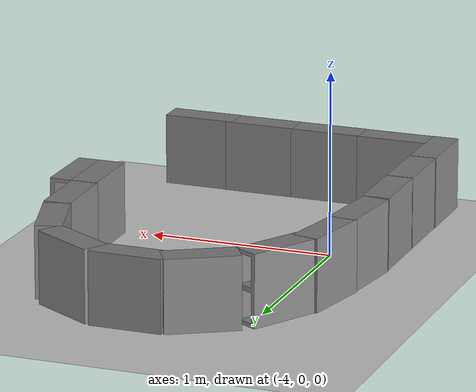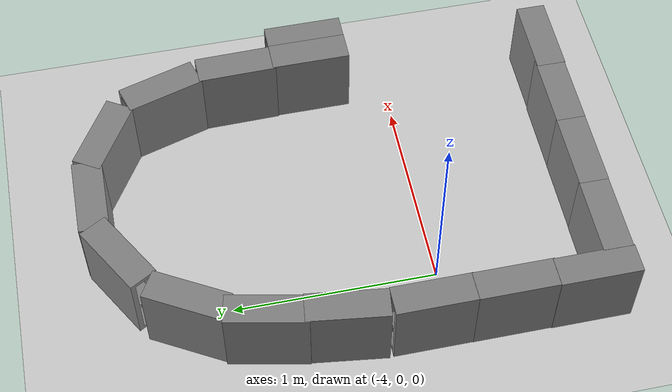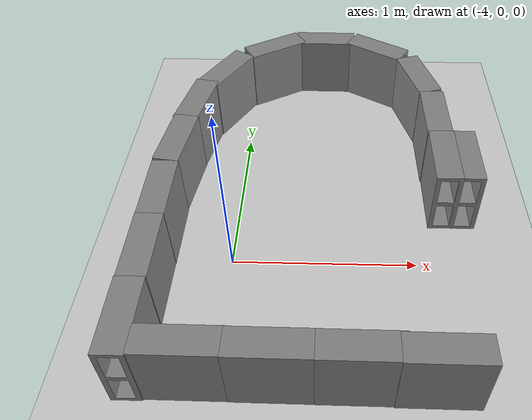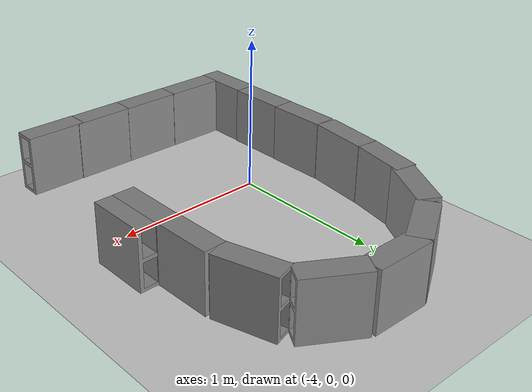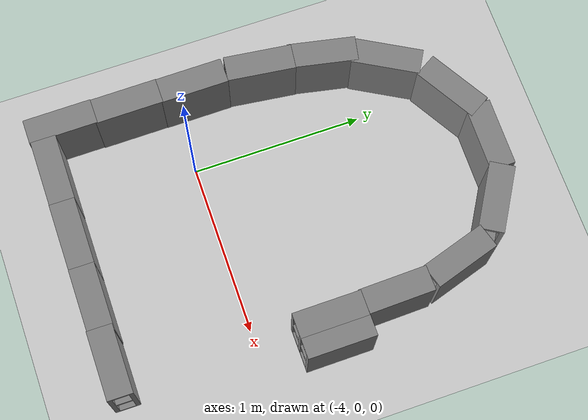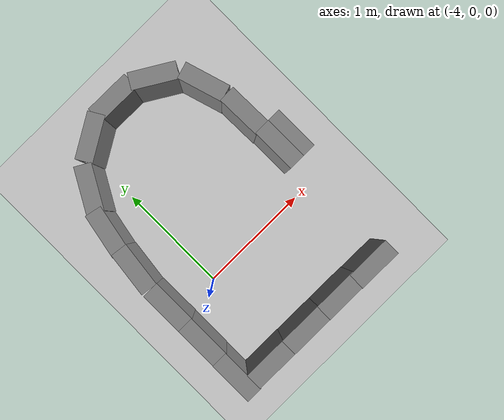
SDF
<sdf version="1.6">
 <world name="default">
  <model name="ground_plane">
   <static>1</static>
   <link name="link">
    <collision name="collision">
     <geometry><plane><normal>0 0 1</normal><size>100 100</size></plane></geometry>
     <surface>
      <contact><collide_bitmask>65535</collide_bitmask></contact>
      <friction><ode><mu>100</mu><mu2>50</mu2></ode></friction>
     </surface>
    </collision>
    <visual name="visual">
     <cast_shadows>0</cast_shadows>
     <geometry><plane><normal>0 0 1</normal><size>100 100</size></plane></geometry>
     <material>
      <script><uri>file://media/materials/scripts/gazebo.material</uri><name>Gazebo/Grey</name></script>
     </material>
    </visual>
   </link>
  </model>
  <model name="cinder_block_wide_clone_2">
   <link name="link">
    <inertial>
     <pose>0 0 0.071438 0 -0 0</pose>
     <mass>5</mass>
     <inertia>
      <ixx>0.0681466</ixx>
      <ixy>0</ixy>
      <iyy>0.0681466</iyy>
      <ixz>0</ixz>
      <iyz>0</iyz>
      <izz>0.124808</izz>
     </inertia>
    </inertial>
    <visual name="visual">
     <geometry><mesh><uri>model://cinder_block_wide/meshes/cinder_block_wide.dae</uri></mesh></geometry>
    </visual>
    <collision name="top">
     <pose>0 0 0.130175 0 -0 0</pose>
     <geometry><box><size>0.387354 0.387354 0.0254</size></box></geometry>
     <surface>
      <contact><ode><max_vel>0.1</max_vel><min_depth>0.001</min_depth></ode></contact>
      <friction><ode><mu>1</mu><mu2>1</mu2></ode></friction>
     </surface>
    </collision>
    <collision name="bottom">
     <pose>0 0 0.0127 0 -0 0</pose>
     <geometry><box><size>0.387354 0.387354 0.0254</size></box></geometry>
     <surface>
      <contact><ode><max_vel>0.1</max_vel><min_depth>0.001</min_depth></ode></contact>
      <friction><ode><mu>1</mu><mu2>1</mu2></ode></friction>
     </surface>
    </collision>
    <collision name="left">
     <pose>0 -0.183355 0.071438 0 -0 0</pose>
     <geometry><box><size>0.387354 0.020643 0.092075</size></box></geometry>
     <surface>
      <contact><ode><max_vel>0.1</max_vel><min_depth>0.001</min_depth></ode></contact>
      <friction><ode><mu>1</mu><mu2>1</mu2></ode></friction>
     </surface>
    </collision>
    <collision name="right">
     <pose>0 0.183355 0.071438 0 -0 0</pose>
     <geometry><box><size>0.387354 0.020643 0.092075</size></box></geometry>
     <surface>
      <contact><ode><max_vel>0.1</max_vel><min_depth>0.001</min_depth></ode></contact>
      <friction><ode><mu>1</mu><mu2>1</mu2></ode></friction>
     </surface>
    </collision>
    <collision name="middle">
     <pose>0 0 0.071438 0 -0 0</pose>
     <geometry><box><size>0.387354 0.0254 0.092075</size></box></geometry>
     <surface>
      <contact><ode><max_vel>0.1</max_vel><min_depth>0.001</min_depth></ode></contact>
      <friction><ode><mu>1</mu><mu2>1</mu2></ode></friction>
     </surface>
    </collision>
   </link>
   <pose>-2.99041 -0.837587 0.263357 -1.56869 0 -0.003839</pose>
  </model>
  <model name="cinder_block_wide_clone_3">
   <link name="link">
    <inertial>
     <pose>0 0 0.071438 0 -0 0</pose>
     <mass>5</mass>
     <inertia>
      <ixx>0.0681466</ixx>
      <ixy>0</ixy>
      <iyy>0.0681466</iyy>
      <ixz>0</ixz>
      <iyz>0</iyz>
      <izz>0.124808</izz>
     </inertia>
    </inertial>
    <visual name="visual">
     <geometry><mesh><uri>model://cinder_block_wide/meshes/cinder_block_wide.dae</uri></mesh></geometry>
    </visual>
    <collision name="top">
     <pose>0 0 0.130175 0 -0 0</pose>
     <geometry><box><size>0.387354 0.387354 0.0254</size></box></geometry>
     <surface>
      <contact><ode><max_vel>0.1</max_vel><min_depth>0.001</min_depth></ode></contact>
      <friction><ode><mu>1</mu><mu2>1</mu2></ode></friction>
     </surface>
    </collision>
    <collision name="bottom">
     <pose>0 0 0.0127 0 -0 0</pose>
     <geometry><box><size>0.387354 0.387354 0.0254</size></box></geometry>
     <surface>
      <contact><ode><max_vel>0.1</max_vel><min_depth>0.001</min_depth></ode></contact>
      <friction><ode><mu>1</mu><mu2>1</mu2></ode></friction>
     </surface>
    </collision>
    <collision name="left">
     <pose>0 -0.183355 0.071438 0 -0 0</pose>
     <geometry><box><size>0.387354 0.020643 0.092075</size></box></geometry>
     <surface>
      <contact><ode><max_vel>0.1</max_vel><min_depth>0.001</min_depth></ode></contact>
      <friction><ode><mu>1</mu><mu2>1</mu2></ode></friction>
     </surface>
    </collision>
    <collision name="right">
     <pose>0 0.183355 0.071438 0 -0 0</pose>
     <geometry><box><size>0.387354 0.020643 0.092075</size></box></geometry>
     <surface>
      <contact><ode><max_vel>0.1</max_vel><min_depth>0.001</min_depth></ode></contact>
      <friction><ode><mu>1</mu><mu2>1</mu2></ode></friction>
     </surface>
    </collision>
    <collision name="middle">
     <pose>0 0 0.071438 0 -0 0</pose>
     <geometry><box><size>0.387354 0.0254 0.092075</size></box></geometry>
     <surface>
      <contact><ode><max_vel>0.1</max_vel><min_depth>0.001</min_depth></ode></contact>
      <friction><ode><mu>1</mu><mu2>1</mu2></ode></friction>
     </surface>
    </collision>
   </link>
   <pose>-3.34042 -0.832439 0.263357 -1.56869 0 -0.003839</pose>
  </model>
  <model name="cinder_block_wide_clone_4">
   <link name="link">
    <inertial>
     <pose>0 0 0.071438 0 -0 0</pose>
     <mass>5</mass>
     <inertia>
      <ixx>0.0681466</ixx>
      <ixy>0</ixy>
      <iyy>0.0681466</iyy>
      <ixz>0</ixz>
      <iyz>0</iyz>
      <izz>0.124808</izz>
     </inertia>
    </inertial>
    <visual name="visual">
     <geometry><mesh><uri>model://cinder_block_wide/meshes/cinder_block_wide.dae</uri></mesh></geometry>
    </visual>
    <collision name="top">
     <pose>0 0 0.130175 0 -0 0</pose>
     <geometry><box><size>0.387354 0.387354 0.0254</size></box></geometry>
     <surface>
      <contact><ode><max_vel>0.1</max_vel><min_depth>0.001</min_depth></ode></contact>
      <friction><ode><mu>1</mu><mu2>1</mu2></ode></friction>
     </surface>
    </collision>
    <collision name="bottom">
     <pose>0 0 0.0127 0 -0 0</pose>
     <geometry><box><size>0.387354 0.387354 0.0254</size></box></geometry>
     <surface>
      <contact><ode><max_vel>0.1</max_vel><min_depth>0.001</min_depth></ode></contact>
      <friction><ode><mu>1</mu><mu2>1</mu2></ode></friction>
     </surface>
    </collision>
    <collision name="left">
     <pose>0 -0.183355 0.071438 0 -0 0</pose>
     <geometry><box><size>0.387354 0.020643 0.092075</size></box></geometry>
     <surface>
      <contact><ode><max_vel>0.1</max_vel><min_depth>0.001</min_depth></ode></contact>
      <friction><ode><mu>1</mu><mu2>1</mu2></ode></friction>
     </surface>
    </collision>
    <collision name="right">
     <pose>0 0.183355 0.071438 0 -0 0</pose>
     <geometry><box><size>0.387354 0.020643 0.092075</size></box></geometry>
     <surface>
      <contact><ode><max_vel>0.1</max_vel><min_depth>0.001</min_depth></ode></contact>
      <friction><ode><mu>1</mu><mu2>1</mu2></ode></friction>
     </surface>
    </collision>
    <collision name="middle">
     <pose>0 0 0.071438 0 -0 0</pose>
     <geometry><box><size>0.387354 0.0254 0.092075</size></box></geometry>
     <surface>
      <contact><ode><max_vel>0.1</max_vel><min_depth>0.001</min_depth></ode></contact>
      <friction><ode><mu>1</mu><mu2>1</mu2></ode></friction>
     </surface>
    </collision>
   </link>
   <pose>-3.72096 -0.830221 0.263357 -1.56869 0 -0.003839</pose>
  </model>
  <model name="cinder_block_wide_clone_5">
   <link name="link">
    <inertial>
     <pose>0 0 0.071438 0 -0 0</pose>
     <mass>5</mass>
     <inertia>
      <ixx>0.0681466</ixx>
      <ixy>0</ixy>
      <iyy>0.0681466</iyy>
      <ixz>0</ixz>
      <iyz>0</iyz>
      <izz>0.124808</izz>
     </inertia>
    </inertial>
    <visual name="visual">
     <geometry><mesh><uri>model://cinder_block_wide/meshes/cinder_block_wide.dae</uri></mesh></geometry>
    </visual>
    <collision name="top">
     <pose>0 0 0.130175 0 -0 0</pose>
     <geometry><box><size>0.387354 0.387354 0.0254</size></box></geometry>
     <surface>
      <contact><ode><max_vel>0.1</max_vel><min_depth>0.001</min_depth></ode></contact>
      <friction><ode><mu>1</mu><mu2>1</mu2></ode></friction>
     </surface>
    </collision>
    <collision name="bottom">
     <pose>0 0 0.0127 0 -0 0</pose>
     <geometry><box><size>0.387354 0.387354 0.0254</size></box></geometry>
     <surface>
      <contact><ode><max_vel>0.1</max_vel><min_depth>0.001</min_depth></ode></contact>
      <friction><ode><mu>1</mu><mu2>1</mu2></ode></friction>
     </surface>
    </collision>
    <collision name="left">
     <pose>0 -0.183355 0.071438 0 -0 0</pose>
     <geometry><box><size>0.387354 0.020643 0.092075</size></box></geometry>
     <surface>
      <contact><ode><max_vel>0.1</max_vel><min_depth>0.001</min_depth></ode></contact>
      <friction><ode><mu>1</mu><mu2>1</mu2></ode></friction>
     </surface>
    </collision>
    <collision name="right">
     <pose>0 0.183355 0.071438 0 -0 0</pose>
     <geometry><box><size>0.387354 0.020643 0.092075</size></box></geometry>
     <surface>
      <contact><ode><max_vel>0.1</max_vel><min_depth>0.001</min_depth></ode></contact>
      <friction><ode><mu>1</mu><mu2>1</mu2></ode></friction>
     </surface>
    </collision>
    <collision name="middle">
     <pose>0 0 0.071438 0 -0 0</pose>
     <geometry><box><size>0.387354 0.0254 0.092075</size></box></geometry>
     <surface>
      <contact><ode><max_vel>0.1</max_vel><min_depth>0.001</min_depth></ode></contact>
      <friction><ode><mu>1</mu><mu2>1</mu2></ode></friction>
     </surface>
    </collision>
   </link>
   <pose>-4.10015 -0.827299 0.263357 -1.56869 0 -0.003839</pose>
  </model>
  <model name="cinder_block_wide_clone_6">
   <link name="link">
    <inertial>
     <pose>0 0 0.071438 0 -0 0</pose>
     <mass>5</mass>
     <inertia>
      <ixx>0.0681466</ixx>
      <ixy>0</ixy>
      <iyy>0.0681466</iyy>
      <ixz>0</ixz>
      <iyz>0</iyz>
      <izz>0.124808</izz>
     </inertia>
    </inertial>
    <visual name="visual">
     <geometry><mesh><uri>model://cinder_block_wide/meshes/cinder_block_wide.dae</uri></mesh></geometry>
    </visual>
    <collision name="top">
     <pose>0 0 0.130175 0 -0 0</pose>
     <geometry><box><size>0.387354 0.387354 0.0254</size></box></geometry>
     <surface>
      <contact><ode><max_vel>0.1</max_vel><min_depth>0.001</min_depth></ode></contact>
      <friction><ode><mu>1</mu><mu2>1</mu2></ode></friction>
     </surface>
    </collision>
    <collision name="bottom">
     <pose>0 0 0.0127 0 -0 0</pose>
     <geometry><box><size>0.387354 0.387354 0.0254</size></box></geometry>
     <surface>
      <contact><ode><max_vel>0.1</max_vel><min_depth>0.001</min_depth></ode></contact>
      <friction><ode><mu>1</mu><mu2>1</mu2></ode></friction>
     </surface>
    </collision>
    <collision name="left">
     <pose>0 -0.183355 0.071438 0 -0 0</pose>
     <geometry><box><size>0.387354 0.020643 0.092075</size></box></geometry>
     <surface>
      <contact><ode><max_vel>0.1</max_vel><min_depth>0.001</min_depth></ode></contact>
      <friction><ode><mu>1</mu><mu2>1</mu2></ode></friction>
     </surface>
    </collision>
    <collision name="right">
     <pose>0 0.183355 0.071438 0 -0 0</pose>
     <geometry><box><size>0.387354 0.020643 0.092075</size></box></geometry>
     <surface>
      <contact><ode><max_vel>0.1</max_vel><min_depth>0.001</min_depth></ode></contact>
      <friction><ode><mu>1</mu><mu2>1</mu2></ode></friction>
     </surface>
    </collision>
    <collision name="middle">
     <pose>0 0 0.071438 0 -0 0</pose>
     <geometry><box><size>0.387354 0.0254 0.092075</size></box></geometry>
     <surface>
      <contact><ode><max_vel>0.1</max_vel><min_depth>0.001</min_depth></ode></contact>
      <friction><ode><mu>1</mu><mu2>1</mu2></ode></friction>
     </surface>
    </collision>
   </link>
   <pose>-4.43202 -0.638749 0.263357 -1.57078 0.002106 -1.56659</pose>
  </model>
  <model name="cinder_block_wide_clone_6_clone">
   <link name="link">
    <inertial>
     <pose>0 0 0.071438 0 -0 0</pose>
     <mass>5</mass>
     <inertia>
      <ixx>0.0681466</ixx>
      <ixy>0</ixy>
      <iyy>0.0681466</iyy>
      <ixz>0</ixz>
      <iyz>0</iyz>
      <izz>0.124808</izz>
     </inertia>
    </inertial>
    <visual name="visual">
     <geometry><mesh><uri>model://cinder_block_wide/meshes/cinder_block_wide.dae</uri></mesh></geometry>
    </visual>
    <collision name="top">
     <pose>0 0 0.130175 0 -0 0</pose>
     <geometry><box><size>0.387354 0.387354 0.0254</size></box></geometry>
     <surface>
      <contact><ode><max_vel>0.1</max_vel><min_depth>0.001</min_depth></ode></contact>
      <friction><ode><mu>1</mu><mu2>1</mu2></ode></friction>
     </surface>
    </collision>
    <collision name="bottom">
     <pose>0 0 0.0127 0 -0 0</pose>
     <geometry><box><size>0.387354 0.387354 0.0254</size></box></geometry>
     <surface>
      <contact><ode><max_vel>0.1</max_vel><min_depth>0.001</min_depth></ode></contact>
      <friction><ode><mu>1</mu><mu2>1</mu2></ode></friction>
     </surface>
    </collision>
    <collision name="left">
     <pose>0 -0.183355 0.071438 0 -0 0</pose>
     <geometry><box><size>0.387354 0.020643 0.092075</size></box></geometry>
     <surface>
      <contact><ode><max_vel>0.1</max_vel><min_depth>0.001</min_depth></ode></contact>
      <friction><ode><mu>1</mu><mu2>1</mu2></ode></friction>
     </surface>
    </collision>
    <collision name="right">
     <pose>0 0.183355 0.071438 0 -0 0</pose>
     <geometry><box><size>0.387354 0.020643 0.092075</size></box></geometry>
     <surface>
      <contact><ode><max_vel>0.1</max_vel><min_depth>0.001</min_depth></ode></contact>
      <friction><ode><mu>1</mu><mu2>1</mu2></ode></friction>
     </surface>
    </collision>
    <collision name="middle">
     <pose>0 0 0.071438 0 -0 0</pose>
     <geometry><box><size>0.387354 0.0254 0.092075</size></box></geometry>
     <surface>
      <contact><ode><max_vel>0.1</max_vel><min_depth>0.001</min_depth></ode></contact>
      <friction><ode><mu>1</mu><mu2>1</mu2></ode></friction>
     </surface>
    </collision>
   </link>
   <pose>-4.43004 -0.260362 0.263357 -1.57078 0.002106 -1.56659</pose>
  </model>
  <model name="cinder_block_wide_clone_6_clone_0">
   <link name="link">
    <inertial>
     <pose>0 0 0.071438 0 -0 0</pose>
     <mass>5</mass>
     <inertia>
      <ixx>0.0681466</ixx>
      <ixy>0</ixy>
      <iyy>0.0681466</iyy>
      <ixz>0</ixz>
      <iyz>0</iyz>
      <izz>0.124808</izz>
     </inertia>
    </inertial>
    <visual name="visual">
     <geometry><mesh><uri>model://cinder_block_wide/meshes/cinder_block_wide.dae</uri></mesh></geometry>
    </visual>
    <collision name="top">
     <pose>0 0 0.130175 0 -0 0</pose>
     <geometry><box><size>0.387354 0.387354 0.0254</size></box></geometry>
     <surface>
      <contact><ode><max_vel>0.1</max_vel><min_depth>0.001</min_depth></ode></contact>
      <friction><ode><mu>1</mu><mu2>1</mu2></ode></friction>
     </surface>
    </collision>
    <collision name="bottom">
     <pose>0 0 0.0127 0 -0 0</pose>
     <geometry><box><size>0.387354 0.387354 0.0254</size></box></geometry>
     <surface>
      <contact><ode><max_vel>0.1</max_vel><min_depth>0.001</min_depth></ode></contact>
      <friction><ode><mu>1</mu><mu2>1</mu2></ode></friction>
     </surface>
    </collision>
    <collision name="left">
     <pose>0 -0.183355 0.071438 0 -0 0</pose>
     <geometry><box><size>0.387354 0.020643 0.092075</size></box></geometry>
     <surface>
      <contact><ode><max_vel>0.1</max_vel><min_depth>0.001</min_depth></ode></contact>
      <friction><ode><mu>1</mu><mu2>1</mu2></ode></friction>
     </surface>
    </collision>
    <collision name="right">
     <pose>0 0.183355 0.071438 0 -0 0</pose>
     <geometry><box><size>0.387354 0.020643 0.092075</size></box></geometry>
     <surface>
      <contact><ode><max_vel>0.1</max_vel><min_depth>0.001</min_depth></ode></contact>
      <friction><ode><mu>1</mu><mu2>1</mu2></ode></friction>
     </surface>
    </collision>
    <collision name="middle">
     <pose>0 0 0.071438 0 -0 0</pose>
     <geometry><box><size>0.387354 0.0254 0.092075</size></box></geometry>
     <surface>
      <contact><ode><max_vel>0.1</max_vel><min_depth>0.001</min_depth></ode></contact>
      <friction><ode><mu>1</mu><mu2>1</mu2></ode></friction>
     </surface>
    </collision>
   </link>
   <pose>-4.43002 0.120318 0.263357 -1.57078 0.002106 -1.56659</pose>
  </model>
  <model name="cinder_block_wide_clone_6_clone_1">
   <link name="link">
    <inertial>
     <pose>0 0 0.071438 0 -0 0</pose>
     <mass>5</mass>
     <inertia>
      <ixx>0.0681466</ixx>
      <ixy>0</ixy>
      <iyy>0.0681466</iyy>
      <ixz>0</ixz>
      <iyz>0</iyz>
      <izz>0.124808</izz>
     </inertia>
    </inertial>
    <visual name="visual">
     <geometry><mesh><uri>model://cinder_block_wide/meshes/cinder_block_wide.dae</uri></mesh></geometry>
    </visual>
    <collision name="top">
     <pose>0 0 0.130175 0 -0 0</pose>
     <geometry><box><size>0.387354 0.387354 0.0254</size></box></geometry>
     <surface>
      <contact><ode><max_vel>0.1</max_vel><min_depth>0.001</min_depth></ode></contact>
      <friction><ode><mu>1</mu><mu2>1</mu2></ode></friction>
     </surface>
    </collision>
    <collision name="bottom">
     <pose>0 0 0.0127 0 -0 0</pose>
     <geometry><box><size>0.387354 0.387354 0.0254</size></box></geometry>
     <surface>
      <contact><ode><max_vel>0.1</max_vel><min_depth>0.001</min_depth></ode></contact>
      <friction><ode><mu>1</mu><mu2>1</mu2></ode></friction>
     </surface>
    </collision>
    <collision name="left">
     <pose>0 -0.183355 0.071438 0 -0 0</pose>
     <geometry><box><size>0.387354 0.020643 0.092075</size></box></geometry>
     <surface>
      <contact><ode><max_vel>0.1</max_vel><min_depth>0.001</min_depth></ode></contact>
      <friction><ode><mu>1</mu><mu2>1</mu2></ode></friction>
     </surface>
    </collision>
    <collision name="right">
     <pose>0 0.183355 0.071438 0 -0 0</pose>
     <geometry><box><size>0.387354 0.020643 0.092075</size></box></geometry>
     <surface>
      <contact><ode><max_vel>0.1</max_vel><min_depth>0.001</min_depth></ode></contact>
      <friction><ode><mu>1</mu><mu2>1</mu2></ode></friction>
     </surface>
    </collision>
    <collision name="middle">
     <pose>0 0 0.071438 0 -0 0</pose>
     <geometry><box><size>0.387354 0.0254 0.092075</size></box></geometry>
     <surface>
      <contact><ode><max_vel>0.1</max_vel><min_depth>0.001</min_depth></ode></contact>
      <friction><ode><mu>1</mu><mu2>1</mu2></ode></friction>
     </surface>
    </collision>
   </link>
   <pose>-4.40892 0.523018 0.263357 -1.57105 0.00209 -1.6971</pose>
  </model>
  <model name="cinder_block_wide_clone_6_clone_2">
   <link name="link">
    <inertial>
     <pose>0 0 0.071438 0 -0 0</pose>
     <mass>5</mass>
     <inertia>
      <ixx>0.0681466</ixx>
      <ixy>0</ixy>
      <iyy>0.0681466</iyy>
      <ixz>0</ixz>
      <iyz>0</iyz>
      <izz>0.124808</izz>
     </inertia>
    </inertial>
    <visual name="visual">
     <geometry><mesh><uri>model://cinder_block_wide/meshes/cinder_block_wide.dae</uri></mesh></geometry>
    </visual>
    <collision name="top">
     <pose>0 0 0.130175 0 -0 0</pose>
     <geometry><box><size>0.387354 0.387354 0.0254</size></box></geometry>
     <surface>
      <contact><ode><max_vel>0.1</max_vel><min_depth>0.001</min_depth></ode></contact>
      <friction><ode><mu>1</mu><mu2>1</mu2></ode></friction>
     </surface>
    </collision>
    <collision name="bottom">
     <pose>0 0 0.0127 0 -0 0</pose>
     <geometry><box><size>0.387354 0.387354 0.0254</size></box></geometry>
     <surface>
      <contact><ode><max_vel>0.1</max_vel><min_depth>0.001</min_depth></ode></contact>
      <friction><ode><mu>1</mu><mu2>1</mu2></ode></friction>
     </surface>
    </collision>
    <collision name="left">
     <pose>0 -0.183355 0.071438 0 -0 0</pose>
     <geometry><box><size>0.387354 0.020643 0.092075</size></box></geometry>
     <surface>
      <contact><ode><max_vel>0.1</max_vel><min_depth>0.001</min_depth></ode></contact>
      <friction><ode><mu>1</mu><mu2>1</mu2></ode></friction>
     </surface>
    </collision>
    <collision name="right">
     <pose>0 0.183355 0.071438 0 -0 0</pose>
     <geometry><box><size>0.387354 0.020643 0.092075</size></box></geometry>
     <surface>
      <contact><ode><max_vel>0.1</max_vel><min_depth>0.001</min_depth></ode></contact>
      <friction><ode><mu>1</mu><mu2>1</mu2></ode></friction>
     </surface>
    </collision>
    <collision name="middle">
     <pose>0 0 0.071438 0 -0 0</pose>
     <geometry><box><size>0.387354 0.0254 0.092075</size></box></geometry>
     <surface>
      <contact><ode><max_vel>0.1</max_vel><min_depth>0.001</min_depth></ode></contact>
      <friction><ode><mu>1</mu><mu2>1</mu2></ode></friction>
     </surface>
    </collision>
   </link>
   <pose>-2.927 0.406046 0.263357 -1.57078 0.002106 -1.56659</pose>
  </model>
  <model name="cinder_block_wide_clone_6_clone_1_clone">
   <link name="link">
    <inertial>
     <pose>0 0 0.071438 0 -0 0</pose>
     <mass>5</mass>
     <inertia>
      <ixx>0.0681466</ixx>
      <ixy>0</ixy>
      <iyy>0.0681466</iyy>
      <ixz>0</ixz>
      <iyz>0</iyz>
      <izz>0.124808</izz>
     </inertia>
    </inertial>
    <visual name="visual">
     <geometry><mesh><uri>model://cinder_block_wide/meshes/cinder_block_wide.dae</uri></mesh></geometry>
    </visual>
    <collision name="top">
     <pose>0 0 0.130175 0 -0 0</pose>
     <geometry><box><size>0.387354 0.387354 0.0254</size></box></geometry>
     <surface>
      <contact><ode><max_vel>0.1</max_vel><min_depth>0.001</min_depth></ode></contact>
      <friction><ode><mu>1</mu><mu2>1</mu2></ode></friction>
     </surface>
    </collision>
    <collision name="bottom">
     <pose>0 0 0.0127 0 -0 0</pose>
     <geometry><box><size>0.387354 0.387354 0.0254</size></box></geometry>
     <surface>
      <contact><ode><max_vel>0.1</max_vel><min_depth>0.001</min_depth></ode></contact>
      <friction><ode><mu>1</mu><mu2>1</mu2></ode></friction>
     </surface>
    </collision>
    <collision name="left">
     <pose>0 -0.183355 0.071438 0 -0 0</pose>
     <geometry><box><size>0.387354 0.020643 0.092075</size></box></geometry>
     <surface>
      <contact><ode><max_vel>0.1</max_vel><min_depth>0.001</min_depth></ode></contact>
      <friction><ode><mu>1</mu><mu2>1</mu2></ode></friction>
     </surface>
    </collision>
    <collision name="right">
     <pose>0 0.183355 0.071438 0 -0 0</pose>
     <geometry><box><size>0.387354 0.020643 0.092075</size></box></geometry>
     <surface>
      <contact><ode><max_vel>0.1</max_vel><min_depth>0.001</min_depth></ode></contact>
      <friction><ode><mu>1</mu><mu2>1</mu2></ode></friction>
     </surface>
    </collision>
    <collision name="middle">
     <pose>0 0 0.071438 0 -0 0</pose>
     <geometry><box><size>0.387354 0.0254 0.092075</size></box></geometry>
     <surface>
      <contact><ode><max_vel>0.1</max_vel><min_depth>0.001</min_depth></ode></contact>
      <friction><ode><mu>1</mu><mu2>1</mu2></ode></friction>
     </surface>
    </collision>
   </link>
   <pose>-4.3535 0.883133 0.263357 -1.5712 0.002065 -1.77123</pose>
  </model>
  <model name="cinder_block_wide_clone_6_clone_1_clone_0">
   <link name="link">
    <inertial>
     <pose>0 0 0.071438 0 -0 0</pose>
     <mass>5</mass>
     <inertia>
      <ixx>0.0681466</ixx>
      <ixy>0</ixy>
      <iyy>0.0681466</iyy>
      <ixz>0</ixz>
      <iyz>0</iyz>
      <izz>0.124808</izz>
     </inertia>
    </inertial>
    <visual name="visual">
     <geometry><mesh><uri>model://cinder_block_wide/meshes/cinder_block_wide.dae</uri></mesh></geometry>
    </visual>
    <collision name="top">
     <pose>0 0 0.130175 0 -0 0</pose>
     <geometry><box><size>0.387354 0.387354 0.0254</size></box></geometry>
     <surface>
      <contact><ode><max_vel>0.1</max_vel><min_depth>0.001</min_depth></ode></contact>
      <friction><ode><mu>1</mu><mu2>1</mu2></ode></friction>
     </surface>
    </collision>
    <collision name="bottom">
     <pose>0 0 0.0127 0 -0 0</pose>
     <geometry><box><size>0.387354 0.387354 0.0254</size></box></geometry>
     <surface>
      <contact><ode><max_vel>0.1</max_vel><min_depth>0.001</min_depth></ode></contact>
      <friction><ode><mu>1</mu><mu2>1</mu2></ode></friction>
     </surface>
    </collision>
    <collision name="left">
     <pose>0 -0.183355 0.071438 0 -0 0</pose>
     <geometry><box><size>0.387354 0.020643 0.092075</size></box></geometry>
     <surface>
      <contact><ode><max_vel>0.1</max_vel><min_depth>0.001</min_depth></ode></contact>
      <friction><ode><mu>1</mu><mu2>1</mu2></ode></friction>
     </surface>
    </collision>
    <collision name="right">
     <pose>0 0.183355 0.071438 0 -0 0</pose>
     <geometry><box><size>0.387354 0.020643 0.092075</size></box></geometry>
     <surface>
      <contact><ode><max_vel>0.1</max_vel><min_depth>0.001</min_depth></ode></contact>
      <friction><ode><mu>1</mu><mu2>1</mu2></ode></friction>
     </surface>
    </collision>
    <collision name="middle">
     <pose>0 0 0.071438 0 -0 0</pose>
     <geometry><box><size>0.387354 0.0254 0.092075</size></box></geometry>
     <surface>
      <contact><ode><max_vel>0.1</max_vel><min_depth>0.001</min_depth></ode></contact>
      <friction><ode><mu>1</mu><mu2>1</mu2></ode></friction>
     </surface>
    </collision>
   </link>
   <pose>-4.20601 1.23973 0.263357 -1.57183 0.001834 -2.08968</pose>
  </model>
  <model name="cinder_block_wide_clone_6_clone_1_clone_1">
   <link name="link">
    <inertial>
     <pose>0 0 0.071438 0 -0 0</pose>
     <mass>5</mass>
     <inertia>
      <ixx>0.0681466</ixx>
      <ixy>0</ixy>
      <iyy>0.0681466</iyy>
      <ixz>0</ixz>
      <iyz>0</iyz>
      <izz>0.124808</izz>
     </inertia>
    </inertial>
    <visual name="visual">
     <geometry><mesh><uri>model://cinder_block_wide/meshes/cinder_block_wide.dae</uri></mesh></geometry>
    </visual>
    <collision name="top">
     <pose>0 0 0.130175 0 -0 0</pose>
     <geometry><box><size>0.387354 0.387354 0.0254</size></box></geometry>
     <surface>
      <contact><ode><max_vel>0.1</max_vel><min_depth>0.001</min_depth></ode></contact>
      <friction><ode><mu>1</mu><mu2>1</mu2></ode></friction>
     </surface>
    </collision>
    <collision name="bottom">
     <pose>0 0 0.0127 0 -0 0</pose>
     <geometry><box><size>0.387354 0.387354 0.0254</size></box></geometry>
     <surface>
      <contact><ode><max_vel>0.1</max_vel><min_depth>0.001</min_depth></ode></contact>
      <friction><ode><mu>1</mu><mu2>1</mu2></ode></friction>
     </surface>
    </collision>
    <collision name="left">
     <pose>0 -0.183355 0.071438 0 -0 0</pose>
     <geometry><box><size>0.387354 0.020643 0.092075</size></box></geometry>
     <surface>
      <contact><ode><max_vel>0.1</max_vel><min_depth>0.001</min_depth></ode></contact>
      <friction><ode><mu>1</mu><mu2>1</mu2></ode></friction>
     </surface>
    </collision>
    <collision name="right">
     <pose>0 0.183355 0.071438 0 -0 0</pose>
     <geometry><box><size>0.387354 0.020643 0.092075</size></box></geometry>
     <surface>
      <contact><ode><max_vel>0.1</max_vel><min_depth>0.001</min_depth></ode></contact>
      <friction><ode><mu>1</mu><mu2>1</mu2></ode></friction>
     </surface>
    </collision>
    <collision name="middle">
     <pose>0 0 0.071438 0 -0 0</pose>
     <geometry><box><size>0.387354 0.0254 0.092075</size></box></geometry>
     <surface>
      <contact><ode><max_vel>0.1</max_vel><min_depth>0.001</min_depth></ode></contact>
      <friction><ode><mu>1</mu><mu2>1</mu2></ode></friction>
     </surface>
    </collision>
   </link>
   <pose>-3.89223 1.5428 0.263357 -1.57261 0.001075 -2.61103</pose>
  </model>
  <model name="cinder_block_wide_clone_6_clone_1_clone_1_clone">
   <link name="link">
    <inertial>
     <pose>0 0 0.071438 0 -0 0</pose>
     <mass>5</mass>
     <inertia>
      <ixx>0.0681466</ixx>
      <ixy>0</ixy>
      <iyy>0.0681466</iyy>
      <ixz>0</ixz>
      <iyz>0</iyz>
      <izz>0.124808</izz>
     </inertia>
    </inertial>
    <visual name="visual">
     <geometry><mesh><uri>model://cinder_block_wide/meshes/cinder_block_wide.dae</uri></mesh></geometry>
    </visual>
    <collision name="top">
     <pose>0 0 0.130175 0 -0 0</pose>
     <geometry><box><size>0.387354 0.387354 0.0254</size></box></geometry>
     <surface>
      <contact><ode><max_vel>0.1</max_vel><min_depth>0.001</min_depth></ode></contact>
      <friction><ode><mu>1</mu><mu2>1</mu2></ode></friction>
     </surface>
    </collision>
    <collision name="bottom">
     <pose>0 0 0.0127 0 -0 0</pose>
     <geometry><box><size>0.387354 0.387354 0.0254</size></box></geometry>
     <surface>
      <contact><ode><max_vel>0.1</max_vel><min_depth>0.001</min_depth></ode></contact>
      <friction><ode><mu>1</mu><mu2>1</mu2></ode></friction>
     </surface>
    </collision>
    <collision name="left">
     <pose>0 -0.183355 0.071438 0 -0 0</pose>
     <geometry><box><size>0.387354 0.020643 0.092075</size></box></geometry>
     <surface>
      <contact><ode><max_vel>0.1</max_vel><min_depth>0.001</min_depth></ode></contact>
      <friction><ode><mu>1</mu><mu2>1</mu2></ode></friction>
     </surface>
    </collision>
    <collision name="right">
     <pose>0 0.183355 0.071438 0 -0 0</pose>
     <geometry><box><size>0.387354 0.020643 0.092075</size></box></geometry>
     <surface>
      <contact><ode><max_vel>0.1</max_vel><min_depth>0.001</min_depth></ode></contact>
      <friction><ode><mu>1</mu><mu2>1</mu2></ode></friction>
     </surface>
    </collision>
    <collision name="middle">
     <pose>0 0 0.071438 0 -0 0</pose>
     <geometry><box><size>0.387354 0.0254 0.092075</size></box></geometry>
     <surface>
      <contact><ode><max_vel>0.1</max_vel><min_depth>0.001</min_depth></ode></contact>
      <friction><ode><mu>1</mu><mu2>1</mu2></ode></friction>
     </surface>
    </collision>
   </link>
   <pose>-3.51761 1.64337 0.263357 -1.5729 -3e-06 3.13368</pose>
  </model>
  <model name="cinder_block_wide_clone_6_clone_1_clone_1_clone_clone">
   <link name="link">
    <inertial>
     <pose>0 0 0.071438 0 -0 0</pose>
     <mass>5</mass>
     <inertia>
      <ixx>0.0681466</ixx>
      <ixy>0</ixy>
      <iyy>0.0681466</iyy>
      <ixz>0</ixz>
      <iyz>0</iyz>
      <izz>0.124808</izz>
     </inertia>
    </inertial>
    <visual name="visual">
     <geometry><mesh><uri>model://cinder_block_wide/meshes/cinder_block_wide.dae</uri></mesh></geometry>
    </visual>
    <collision name="top">
     <pose>0 0 0.130175 0 -0 0</pose>
     <geometry><box><size>0.387354 0.387354 0.0254</size></box></geometry>
     <surface>
      <contact><ode><max_vel>0.1</max_vel><min_depth>0.001</min_depth></ode></contact>
      <friction><ode><mu>1</mu><mu2>1</mu2></ode></friction>
     </surface>
    </collision>
    <collision name="bottom">
     <pose>0 0 0.0127 0 -0 0</pose>
     <geometry><box><size>0.387354 0.387354 0.0254</size></box></geometry>
     <surface>
      <contact><ode><max_vel>0.1</max_vel><min_depth>0.001</min_depth></ode></contact>
      <friction><ode><mu>1</mu><mu2>1</mu2></ode></friction>
     </surface>
    </collision>
    <collision name="left">
     <pose>0 -0.183355 0.071438 0 -0 0</pose>
     <geometry><box><size>0.387354 0.020643 0.092075</size></box></geometry>
     <surface>
      <contact><ode><max_vel>0.1</max_vel><min_depth>0.001</min_depth></ode></contact>
      <friction><ode><mu>1</mu><mu2>1</mu2></ode></friction>
     </surface>
    </collision>
    <collision name="right">
     <pose>0 0.183355 0.071438 0 -0 0</pose>
     <geometry><box><size>0.387354 0.020643 0.092075</size></box></geometry>
     <surface>
      <contact><ode><max_vel>0.1</max_vel><min_depth>0.001</min_depth></ode></contact>
      <friction><ode><mu>1</mu><mu2>1</mu2></ode></friction>
     </surface>
    </collision>
    <collision name="middle">
     <pose>0 0 0.071438 0 -0 0</pose>
     <geometry><box><size>0.387354 0.0254 0.092075</size></box></geometry>
     <surface>
      <contact><ode><max_vel>0.1</max_vel><min_depth>0.001</min_depth></ode></contact>
      <friction><ode><mu>1</mu><mu2>1</mu2></ode></friction>
     </surface>
    </collision>
   </link>
   <pose>-3.13595 1.53501 0.263357 -1.57261 -0.001068 2.60293</pose>
  </model>
  <model name="cinder_block_wide_clone_6_clone_1_clone_1_clone_clone_clone">
   <link name="link">
    <inertial>
     <pose>0 0 0.071438 0 -0 0</pose>
     <mass>5</mass>
     <inertia>
      <ixx>0.0681466</ixx>
      <ixy>0</ixy>
      <iyy>0.0681466</iyy>
      <ixz>0</ixz>
      <iyz>0</iyz>
      <izz>0.124808</izz>
     </inertia>
    </inertial>
    <visual name="visual">
     <geometry><mesh><uri>model://cinder_block_wide/meshes/cinder_block_wide.dae</uri></mesh></geometry>
    </visual>
    <collision name="top">
     <pose>0 0 0.130175 0 -0 0</pose>
     <geometry><box><size>0.387354 0.387354 0.0254</size></box></geometry>
     <surface>
      <contact><ode><max_vel>0.1</max_vel><min_depth>0.001</min_depth></ode></contact>
      <friction><ode><mu>1</mu><mu2>1</mu2></ode></friction>
     </surface>
    </collision>
    <collision name="bottom">
     <pose>0 0 0.0127 0 -0 0</pose>
     <geometry><box><size>0.387354 0.387354 0.0254</size></box></geometry>
     <surface>
      <contact><ode><max_vel>0.1</max_vel><min_depth>0.001</min_depth></ode></contact>
      <friction><ode><mu>1</mu><mu2>1</mu2></ode></friction>
     </surface>
    </collision>
    <collision name="left">
     <pose>0 -0.183355 0.071438 0 -0 0</pose>
     <geometry><box><size>0.387354 0.020643 0.092075</size></box></geometry>
     <surface>
      <contact><ode><max_vel>0.1</max_vel><min_depth>0.001</min_depth></ode></contact>
      <friction><ode><mu>1</mu><mu2>1</mu2></ode></friction>
     </surface>
    </collision>
    <collision name="right">
     <pose>0 0.183355 0.071438 0 -0 0</pose>
     <geometry><box><size>0.387354 0.020643 0.092075</size></box></geometry>
     <surface>
      <contact><ode><max_vel>0.1</max_vel><min_depth>0.001</min_depth></ode></contact>
      <friction><ode><mu>1</mu><mu2>1</mu2></ode></friction>
     </surface>
    </collision>
    <collision name="middle">
     <pose>0 0 0.071438 0 -0 0</pose>
     <geometry><box><size>0.387354 0.0254 0.092075</size></box></geometry>
     <surface>
      <contact><ode><max_vel>0.1</max_vel><min_depth>0.001</min_depth></ode></contact>
      <friction><ode><mu>1</mu><mu2>1</mu2></ode></friction>
     </surface>
    </collision>
   </link>
   <pose>-2.86207 1.18593 0.263357 -1.57143 -0.002008 1.86807</pose>
  </model>
  <model name="cinder_block_wide_clone_6_clone_1_clone_1_clone_clone_clone_0">
   <link name="link">
    <inertial>
     <pose>0 0 0.071438 0 -0 0</pose>
     <mass>5</mass>
     <inertia>
      <ixx>0.0681466</ixx>
      <ixy>0</ixy>
      <iyy>0.0681466</iyy>
      <ixz>0</ixz>
      <iyz>0</iyz>
      <izz>0.124808</izz>
     </inertia>
    </inertial>
    <visual name="visual">
     <geometry><mesh><uri>model://cinder_block_wide/meshes/cinder_block_wide.dae</uri></mesh></geometry>
    </visual>
    <collision name="top">
     <pose>0 0 0.130175 0 -0 0</pose>
     <geometry><box><size>0.387354 0.387354 0.0254</size></box></geometry>
     <surface>
      <contact><ode><max_vel>0.1</max_vel><min_depth>0.001</min_depth></ode></contact>
      <friction><ode><mu>1</mu><mu2>1</mu2></ode></friction>
     </surface>
    </collision>
    <collision name="bottom">
     <pose>0 0 0.0127 0 -0 0</pose>
     <geometry><box><size>0.387354 0.387354 0.0254</size></box></geometry>
     <surface>
      <contact><ode><max_vel>0.1</max_vel><min_depth>0.001</min_depth></ode></contact>
      <friction><ode><mu>1</mu><mu2>1</mu2></ode></friction>
     </surface>
    </collision>
    <collision name="left">
     <pose>0 -0.183355 0.071438 0 -0 0</pose>
     <geometry><box><size>0.387354 0.020643 0.092075</size></box></geometry>
     <surface>
      <contact><ode><max_vel>0.1</max_vel><min_depth>0.001</min_depth></ode></contact>
      <friction><ode><mu>1</mu><mu2>1</mu2></ode></friction>
     </surface>
    </collision>
    <collision name="right">
     <pose>0 0.183355 0.071438 0 -0 0</pose>
     <geometry><box><size>0.387354 0.020643 0.092075</size></box></geometry>
     <surface>
      <contact><ode><max_vel>0.1</max_vel><min_depth>0.001</min_depth></ode></contact>
      <friction><ode><mu>1</mu><mu2>1</mu2></ode></friction>
     </surface>
    </collision>
    <collision name="middle">
     <pose>0 0 0.071438 0 -0 0</pose>
     <geometry><box><size>0.387354 0.0254 0.092075</size></box></geometry>
     <surface>
      <contact><ode><max_vel>0.1</max_vel><min_depth>0.001</min_depth></ode></contact>
      <friction><ode><mu>1</mu><mu2>1</mu2></ode></friction>
     </surface>
    </collision>
   </link>
   <pose>-2.7936 0.782731 0.263357 -1.57086 -0.002104 1.59329</pose>
  </model>
  <model name="cinder_block_wide_clone_6_clone_2_clone">
   <link name="link">
    <inertial>
     <pose>0 0 0.071438 0 -0 0</pose>
     <mass>5</mass>
     <inertia>
      <ixx>0.0681466</ixx>
      <ixy>0</ixy>
      <iyy>0.0681466</iyy>
      <ixz>0</ixz>
      <iyz>0</iyz>
      <izz>0.124808</izz>
     </inertia>
    </inertial>
    <visual name="visual">
     <geometry><mesh><uri>model://cinder_block_wide/meshes/cinder_block_wide.dae</uri></mesh></geometry>
    </visual>
    <collision name="top">
     <pose>0 0 0.130175 0 -0 0</pose>
     <geometry><box><size>0.387354 0.387354 0.0254</size></box></geometry>
     <surface>
      <contact><ode><max_vel>0.1</max_vel><min_depth>0.001</min_depth></ode></contact>
      <friction><ode><mu>1</mu><mu2>1</mu2></ode></friction>
     </surface>
    </collision>
    <collision name="bottom">
     <pose>0 0 0.0127 0 -0 0</pose>
     <geometry><box><size>0.387354 0.387354 0.0254</size></box></geometry>
     <surface>
      <contact><ode><max_vel>0.1</max_vel><min_depth>0.001</min_depth></ode></contact>
      <friction><ode><mu>1</mu><mu2>1</mu2></ode></friction>
     </surface>
    </collision>
    <collision name="left">
     <pose>0 -0.183355 0.071438 0 -0 0</pose>
     <geometry><box><size>0.387354 0.020643 0.092075</size></box></geometry>
     <surface>
      <contact><ode><max_vel>0.1</max_vel><min_depth>0.001</min_depth></ode></contact>
      <friction><ode><mu>1</mu><mu2>1</mu2></ode></friction>
     </surface>
    </collision>
    <collision name="right">
     <pose>0 0.183355 0.071438 0 -0 0</pose>
     <geometry><box><size>0.387354 0.020643 0.092075</size></box></geometry>
     <surface>
      <contact><ode><max_vel>0.1</max_vel><min_depth>0.001</min_depth></ode></contact>
      <friction><ode><mu>1</mu><mu2>1</mu2></ode></friction>
     </surface>
    </collision>
    <collision name="middle">
     <pose>0 0 0.071438 0 -0 0</pose>
     <geometry><box><size>0.387354 0.0254 0.092075</size></box></geometry>
     <surface>
      <contact><ode><max_vel>0.1</max_vel><min_depth>0.001</min_depth></ode></contact>
      <friction><ode><mu>1</mu><mu2>1</mu2></ode></friction>
     </surface>
    </collision>
   </link>
   <pose>-2.81104 0.407187 0.263357 -1.57078 0.002106 -1.56659</pose>
  </model>
 </world>
</sdf>
